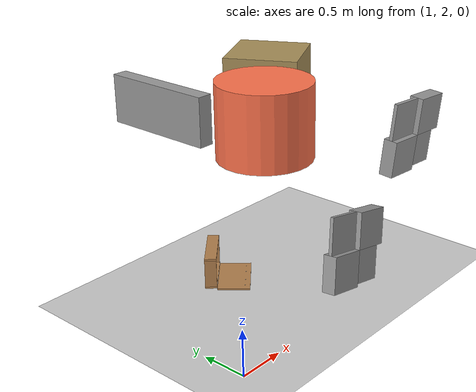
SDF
<sdf version="1.7">
 <world name="default">
  <model name="demo_clean">
   <static>1</static>
   <link name="Wall_28_clone_clone">
    <gravity>0</gravity>
    <collision name="Wall_28_Collision">
     <geometry><box><size>1.13952 0.15 0.476648</size></box></geometry>
     <pose>0 0 1.25 0 -0 0</pose>
     <surface>
      <friction>
       <ode><mu>1</mu><mu2>1</mu2><fdir1>0 0 0</fdir1><slip1>0</slip1><slip2>0</slip2></ode>
       <torsional>
        <coefficient>1</coefficient>
        <patch_radius>0</patch_radius>
        <surface_radius>0</surface_radius>
        <use_patch_radius>1</use_patch_radius>
        <ode><slip>0</slip></ode>
       </torsional>
      </friction>
      <bounce><restitution_coefficient>0</restitution_coefficient><threshold>1e+06</threshold></bounce>
      <contact>
       <collide_without_contact>0</collide_without_contact>
       <collide_without_contact_bitmask>1</collide_without_contact_bitmask>
       <collide_bitmask>1</collide_bitmask>
       <ode>
        <soft_cfm>0</soft_cfm>
        <soft_erp>0.2</soft_erp>
        <kp>1e+13</kp>
        <kd>1</kd>
        <max_vel>0.01</max_vel>
        <min_depth>0</min_depth>
       </ode>
       <bullet>
        <split_impulse>1</split_impulse>
        <split_impulse_penetration_threshold>-0.01</split_impulse_penetration_threshold>
        <soft_cfm>0</soft_cfm>
        <soft_erp>0.2</soft_erp>
        <kp>1e+13</kp>
        <kd>1</kd>
       </bullet>
      </contact>
     </surface>
    </collision>
    <visual name="Wall_28_Visual">
     <geometry><box><size>1.13952 0.15 0.476648</size></box></geometry>
     <material>
      <script><name>Gazebo/Grey</name><uri>file://media/materials/scripts/gazebo.material</uri></script>
      <ambient>1 1 1 1</ambient>
      <shader type="pixel"><normal_map>__default__</normal_map></shader>
     </material>
     <pose>0 0 1.25 0 -0 0</pose>
    </visual>
    <inertial>
     <inertia><ixx>0</ixx><iyy>0</iyy><izz>0</izz><ixy>0</ixy><ixz>0</ixz><iyz>0</iyz></inertia>
     <mass>1</mass>
    </inertial>
    <pose>1.3006 3.24462 1.01168 0 0 -1.57004</pose>
   </link>
  </model>
  <model name="static_cylinder_2">
   <pose>2.2457 2.80734 2 0 0 -1.71264</pose>
   <static>1</static>
   <allow_auto_disable>0</allow_auto_disable>
   <link name="link">
    <collision name="collision">
     <geometry><cylinder><radius>0.5</radius><length>0.8</length></cylinder></geometry>
     <max_contacts>20</max_contacts>
    </collision>
    <visual name="visual">
     <geometry><cylinder><radius>0.5</radius><length>0.8</length></cylinder></geometry>
     <material><ambient>1 0.447059 0.298039 1</ambient><diffuse>1 0.447059 0.298039 1</diffuse></material>
    </visual>
   </link>
  </model>
  <model name="dyn_box_5">
   <pose>3.10506 3.51149 2 0 -0 0.494366</pose>
   <static>1</static>
   <allow_auto_disable>0</allow_auto_disable>
   <link name="link">
    <collision name="collision">
     <geometry><box><size>0.8 0.8 0.8</size></box></geometry>
     <max_contacts>20</max_contacts>
    </collision>
    <visual name="visual">
     <geometry><box><size>0.8 0.8 0.8</size></box></geometry>
     <material>
      <ambient>0.658824 0.560784 0.34902 1</ambient>
      <diffuse>0.658824 0.560784 0.34902 1</diffuse>
     </material>
    </visual>
   </link>
  </model>
  <model name="ground_plane">
   <static>1</static>
   <link name="link">
    <collision name="collision">
     <geometry><plane><normal>0 0 1</normal><size>100 100</size></plane></geometry>
     <surface>
      <contact><collide_bitmask>65535</collide_bitmask></contact>
      <friction><ode><mu>100</mu><mu2>50</mu2></ode></friction>
     </surface>
    </collision>
    <visual name="visual">
     <cast_shadows>0</cast_shadows>
     <geometry><plane><normal>0 0 1</normal><size>100 100</size></plane></geometry>
     <material>
      <script><uri>file://media/materials/scripts/gazebo.material</uri><name>Gazebo/Grey</name></script>
     </material>
    </visual>
   </link>
  </model>
  <model name="wall_slate_1">
   <static>1</static>
   <link name="link_0">
    <inertial><mass>1</mass></inertial>
    <gravity>0</gravity>
    <visual name="visual">
     <pose>0 0.2 0.2 0 -0 0</pose>
     <geometry><box><size>0.16 0.4 0.4</size></box></geometry>
     <material>
      <lighting>1</lighting>
      <script><uri>file://media/materials/scripts/gazebo.material</uri><name>Gazebo/Grey</name></script>
      <shader type="pixel"><normal_map>__default__</normal_map></shader>
      <ambient>0.3 0.3 0.3 1</ambient>
      <diffuse>0.7 0.7 0.7 1</diffuse>
      <specular>0.01 0.01 0.01 1</specular>
      <emissive>0 0 0 1</emissive>
     </material>
    </visual>
    <visual name="ModelPreview_0::link_0::visual_1">
     <pose>0 0.2 -0.2 0 -0 0</pose>
     <geometry><box><size>0.04 0.4 0.4</size></box></geometry>
     <material>
      <lighting>1</lighting>
      <script><uri>file://media/materials/scripts/gazebo.material</uri><name>Gazebo/Grey</name></script>
      <shader type="pixel"><normal_map>__default__</normal_map></shader>
      <ambient>0.3 0.3 0.3 1</ambient>
      <diffuse>0.7 0.7 0.7 1</diffuse>
      <specular>0.01 0.01 0.01 1</specular>
      <emissive>0 0 0 1</emissive>
     </material>
    </visual>
    <visual name="ModelPreview_0::link_0::visual_2">
     <pose>0 -0.2 0.2 0 -0 0</pose>
     <geometry><box><size>0.04 0.4 0.4</size></box></geometry>
     <material>
      <lighting>1</lighting>
      <script><uri>file://media/materials/scripts/gazebo.material</uri><name>Gazebo/Grey</name></script>
      <shader type="pixel"><normal_map>__default__</normal_map></shader>
      <ambient>0.3 0.3 0.3 1</ambient>
      <diffuse>0.7 0.7 0.7 1</diffuse>
      <specular>0.01 0.01 0.01 1</specular>
      <emissive>0 0 0 1</emissive>
     </material>
    </visual>
    <visual name="ModelPreview_0::link_0::visual_3">
     <pose>0 -0.2 -0.2 0 -0 0</pose>
     <geometry><box><size>0.16 0.4 0.4</size></box></geometry>
     <material>
      <lighting>1</lighting>
      <script><uri>file://media/materials/scripts/gazebo.material</uri><name>Gazebo/Grey</name></script>
      <shader type="pixel"><normal_map>__default__</normal_map></shader>
      <ambient>0.3 0.3 0.3 1</ambient>
      <diffuse>0.7 0.7 0.7 1</diffuse>
      <specular>0.01 0.01 0.01 1</specular>
      <emissive>0 0 0 1</emissive>
     </material>
    </visual>
    <collision name="collision_2">
     <pose>0 -0.2 0.2 0 -0 0</pose>
     <geometry><box><size>0.04 0.4 0.4</size></box></geometry>
     <surface>
      <friction>
       <ode><mu>1</mu><mu2>1</mu2><fdir1>0 0 0</fdir1><slip1>0</slip1><slip2>0</slip2></ode>
       <torsional>
        <coefficient>1</coefficient>
        <patch_radius>0</patch_radius>
        <surface_radius>0</surface_radius>
        <use_patch_radius>1</use_patch_radius>
        <ode><slip>0</slip></ode>
       </torsional>
      </friction>
      <bounce><restitution_coefficient>0</restitution_coefficient><threshold>1e+06</threshold></bounce>
      <contact>
       <collide_without_contact>0</collide_without_contact>
       <collide_without_contact_bitmask>1</collide_without_contact_bitmask>
       <collide_bitmask>1</collide_bitmask>
       <ode>
        <soft_cfm>0</soft_cfm>
        <soft_erp>0.2</soft_erp>
        <kp>1e+13</kp>
        <kd>1</kd>
        <max_vel>0.01</max_vel>
        <min_depth>0</min_depth>
       </ode>
       <bullet>
        <split_impulse>1</split_impulse>
        <split_impulse_penetration_threshold>-0.01</split_impulse_penetration_threshold>
        <soft_cfm>0</soft_cfm>
        <soft_erp>0.2</soft_erp>
        <kp>1e+13</kp>
        <kd>1</kd>
       </bullet>
      </contact>
     </surface>
    </collision>
    <collision name="collision_1">
     <pose>0 0.2 -0.2 0 -0 0</pose>
     <geometry><box><size>0.04 0.4 0.4</size></box></geometry>
     <surface>
      <friction>
       <ode><mu>1</mu><mu2>1</mu2><fdir1>0 0 0</fdir1><slip1>0</slip1><slip2>0</slip2></ode>
       <torsional>
        <coefficient>1</coefficient>
        <patch_radius>0</patch_radius>
        <surface_radius>0</surface_radius>
        <use_patch_radius>1</use_patch_radius>
        <ode><slip>0</slip></ode>
       </torsional>
      </friction>
      <bounce><restitution_coefficient>0</restitution_coefficient><threshold>1e+06</threshold></bounce>
      <contact>
       <collide_without_contact>0</collide_without_contact>
       <collide_without_contact_bitmask>1</collide_without_contact_bitmask>
       <collide_bitmask>1</collide_bitmask>
       <ode>
        <soft_cfm>0</soft_cfm>
        <soft_erp>0.2</soft_erp>
        <kp>1e+13</kp>
        <kd>1</kd>
        <max_vel>0.01</max_vel>
        <min_depth>0</min_depth>
       </ode>
       <bullet>
        <split_impulse>1</split_impulse>
        <split_impulse_penetration_threshold>-0.01</split_impulse_penetration_threshold>
        <soft_cfm>0</soft_cfm>
        <soft_erp>0.2</soft_erp>
        <kp>1e+13</kp>
        <kd>1</kd>
       </bullet>
      </contact>
     </surface>
    </collision>
    <collision name="collision_4">
     <pose>0 0.2 0.2 0 -0 0</pose>
     <geometry><box><size>0.16 0.4 0.4</size></box></geometry>
     <surface>
      <friction>
       <ode><mu>1</mu><mu2>1</mu2><fdir1>0 0 0</fdir1><slip1>0</slip1><slip2>0</slip2></ode>
       <torsional>
        <coefficient>1</coefficient>
        <patch_radius>0</patch_radius>
        <surface_radius>0</surface_radius>
        <use_patch_radius>1</use_patch_radius>
        <ode><slip>0</slip></ode>
       </torsional>
      </friction>
      <bounce><restitution_coefficient>0</restitution_coefficient><threshold>1e+06</threshold></bounce>
      <contact>
       <collide_without_contact>0</collide_without_contact>
       <collide_without_contact_bitmask>1</collide_without_contact_bitmask>
       <collide_bitmask>1</collide_bitmask>
       <ode>
        <soft_cfm>0</soft_cfm>
        <soft_erp>0.2</soft_erp>
        <kp>1e+13</kp>
        <kd>1</kd>
        <max_vel>0.01</max_vel>
        <min_depth>0</min_depth>
       </ode>
       <bullet>
        <split_impulse>1</split_impulse>
        <split_impulse_penetration_threshold>-0.01</split_impulse_penetration_threshold>
        <soft_cfm>0</soft_cfm>
        <soft_erp>0.2</soft_erp>
        <kp>1e+13</kp>
        <kd>1</kd>
       </bullet>
      </contact>
     </surface>
    </collision>
    <collision name="collision_3">
     <pose>0 -0.2 -0.2 0 -0 0</pose>
     <geometry><box><size>0.16 0.4 0.4</size></box></geometry>
     <surface>
      <friction>
       <ode><mu>1</mu><mu2>1</mu2><fdir1>0 0 0</fdir1><slip1>0</slip1><slip2>0</slip2></ode>
       <torsional>
        <coefficient>1</coefficient>
        <patch_radius>0</patch_radius>
        <surface_radius>0</surface_radius>
        <use_patch_radius>1</use_patch_radius>
        <ode><slip>0</slip></ode>
       </torsional>
      </friction>
      <bounce><restitution_coefficient>0</restitution_coefficient><threshold>1e+06</threshold></bounce>
      <contact>
       <collide_without_contact>0</collide_without_contact>
       <collide_without_contact_bitmask>1</collide_without_contact_bitmask>
       <collide_bitmask>1</collide_bitmask>
       <ode>
        <soft_cfm>0</soft_cfm>
        <soft_erp>0.2</soft_erp>
        <kp>1e+13</kp>
        <kd>1</kd>
        <max_vel>0.01</max_vel>
        <min_depth>0</min_depth>
       </ode>
       <bullet>
        <split_impulse>1</split_impulse>
        <split_impulse_penetration_threshold>-0.01</split_impulse_penetration_threshold>
        <soft_cfm>0</soft_cfm>
        <soft_erp>0.2</soft_erp>
        <kp>1e+13</kp>
        <kd>1</kd>
       </bullet>
      </contact>
     </surface>
    </collision>
   </link>
   <pose>3.77851 2.06618 1.6 -0.06 0.08 -1.5659</pose>
  </model>
  <model name="wall_slate_80">
   <static>1</static>
   <link name="link_0">
    <inertial><mass>1</mass></inertial>
    <gravity>0</gravity>
    <visual name="visual">
     <pose>0 0.2 0.2 0 -0 0</pose>
     <geometry><box><size>0.16 0.4 0.4</size></box></geometry>
     <material>
      <lighting>1</lighting>
      <script><uri>file://media/materials/scripts/gazebo.material</uri><name>Gazebo/Grey</name></script>
      <shader type="pixel"><normal_map>__default__</normal_map></shader>
      <ambient>0.3 0.3 0.3 1</ambient>
      <diffuse>0.7 0.7 0.7 1</diffuse>
      <specular>0.01 0.01 0.01 1</specular>
      <emissive>0 0 0 1</emissive>
     </material>
    </visual>
    <visual name="ModelPreview_0::link_0::visual_1">
     <pose>0 0.2 -0.2 0 -0 0</pose>
     <geometry><box><size>0.04 0.4 0.4</size></box></geometry>
     <material>
      <lighting>1</lighting>
      <script><uri>file://media/materials/scripts/gazebo.material</uri><name>Gazebo/Grey</name></script>
      <shader type="pixel"><normal_map>__default__</normal_map></shader>
      <ambient>0.3 0.3 0.3 1</ambient>
      <diffuse>0.7 0.7 0.7 1</diffuse>
      <specular>0.01 0.01 0.01 1</specular>
      <emissive>0 0 0 1</emissive>
     </material>
    </visual>
    <visual name="ModelPreview_0::link_0::visual_2">
     <pose>0 -0.2 0.2 0 -0 0</pose>
     <geometry><box><size>0.04 0.4 0.4</size></box></geometry>
     <material>
      <lighting>1</lighting>
      <script><uri>file://media/materials/scripts/gazebo.material</uri><name>Gazebo/Grey</name></script>
      <shader type="pixel"><normal_map>__default__</normal_map></shader>
      <ambient>0.3 0.3 0.3 1</ambient>
      <diffuse>0.7 0.7 0.7 1</diffuse>
      <specular>0.01 0.01 0.01 1</specular>
      <emissive>0 0 0 1</emissive>
     </material>
    </visual>
    <visual name="ModelPreview_0::link_0::visual_3">
     <pose>0 -0.2 -0.2 0 -0 0</pose>
     <geometry><box><size>0.16 0.4 0.4</size></box></geometry>
     <material>
      <lighting>1</lighting>
      <script><uri>file://media/materials/scripts/gazebo.material</uri><name>Gazebo/Grey</name></script>
      <shader type="pixel"><normal_map>__default__</normal_map></shader>
      <ambient>0.3 0.3 0.3 1</ambient>
      <diffuse>0.7 0.7 0.7 1</diffuse>
      <specular>0.01 0.01 0.01 1</specular>
      <emissive>0 0 0 1</emissive>
     </material>
    </visual>
    <collision name="collision_2">
     <pose>0 -0.2 0.2 0 -0 0</pose>
     <geometry><box><size>0.04 0.4 0.4</size></box></geometry>
     <surface>
      <friction>
       <ode><mu>1</mu><mu2>1</mu2><fdir1>0 0 0</fdir1><slip1>0</slip1><slip2>0</slip2></ode>
       <torsional>
        <coefficient>1</coefficient>
        <patch_radius>0</patch_radius>
        <surface_radius>0</surface_radius>
        <use_patch_radius>1</use_patch_radius>
        <ode><slip>0</slip></ode>
       </torsional>
      </friction>
      <bounce><restitution_coefficient>0</restitution_coefficient><threshold>1e+06</threshold></bounce>
      <contact>
       <collide_without_contact>0</collide_without_contact>
       <collide_without_contact_bitmask>1</collide_without_contact_bitmask>
       <collide_bitmask>1</collide_bitmask>
       <ode>
        <soft_cfm>0</soft_cfm>
        <soft_erp>0.2</soft_erp>
        <kp>1e+13</kp>
        <kd>1</kd>
        <max_vel>0.01</max_vel>
        <min_depth>0</min_depth>
       </ode>
       <bullet>
        <split_impulse>1</split_impulse>
        <split_impulse_penetration_threshold>-0.01</split_impulse_penetration_threshold>
        <soft_cfm>0</soft_cfm>
        <soft_erp>0.2</soft_erp>
        <kp>1e+13</kp>
        <kd>1</kd>
       </bullet>
      </contact>
     </surface>
    </collision>
    <collision name="collision_1">
     <pose>0 0.2 -0.2 0 -0 0</pose>
     <geometry><box><size>0.04 0.4 0.4</size></box></geometry>
     <surface>
      <friction>
       <ode><mu>1</mu><mu2>1</mu2><fdir1>0 0 0</fdir1><slip1>0</slip1><slip2>0</slip2></ode>
       <torsional>
        <coefficient>1</coefficient>
        <patch_radius>0</patch_radius>
        <surface_radius>0</surface_radius>
        <use_patch_radius>1</use_patch_radius>
        <ode><slip>0</slip></ode>
       </torsional>
      </friction>
      <bounce><restitution_coefficient>0</restitution_coefficient><threshold>1e+06</threshold></bounce>
      <contact>
       <collide_without_contact>0</collide_without_contact>
       <collide_without_contact_bitmask>1</collide_without_contact_bitmask>
       <collide_bitmask>1</collide_bitmask>
       <ode>
        <soft_cfm>0</soft_cfm>
        <soft_erp>0.2</soft_erp>
        <kp>1e+13</kp>
        <kd>1</kd>
        <max_vel>0.01</max_vel>
        <min_depth>0</min_depth>
       </ode>
       <bullet>
        <split_impulse>1</split_impulse>
        <split_impulse_penetration_threshold>-0.01</split_impulse_penetration_threshold>
        <soft_cfm>0</soft_cfm>
        <soft_erp>0.2</soft_erp>
        <kp>1e+13</kp>
        <kd>1</kd>
       </bullet>
      </contact>
     </surface>
    </collision>
    <collision name="collision_4">
     <pose>0 0.2 0.2 0 -0 0</pose>
     <geometry><box><size>0.16 0.4 0.4</size></box></geometry>
     <surface>
      <friction>
       <ode><mu>1</mu><mu2>1</mu2><fdir1>0 0 0</fdir1><slip1>0</slip1><slip2>0</slip2></ode>
       <torsional>
        <coefficient>1</coefficient>
        <patch_radius>0</patch_radius>
        <surface_radius>0</surface_radius>
        <use_patch_radius>1</use_patch_radius>
        <ode><slip>0</slip></ode>
       </torsional>
      </friction>
      <bounce><restitution_coefficient>0</restitution_coefficient><threshold>1e+06</threshold></bounce>
      <contact>
       <collide_without_contact>0</collide_without_contact>
       <collide_without_contact_bitmask>1</collide_without_contact_bitmask>
       <collide_bitmask>1</collide_bitmask>
       <ode>
        <soft_cfm>0</soft_cfm>
        <soft_erp>0.2</soft_erp>
        <kp>1e+13</kp>
        <kd>1</kd>
        <max_vel>0.01</max_vel>
        <min_depth>0</min_depth>
       </ode>
       <bullet>
        <split_impulse>1</split_impulse>
        <split_impulse_penetration_threshold>-0.01</split_impulse_penetration_threshold>
        <soft_cfm>0</soft_cfm>
        <soft_erp>0.2</soft_erp>
        <kp>1e+13</kp>
        <kd>1</kd>
       </bullet>
      </contact>
     </surface>
    </collision>
    <collision name="collision_3">
     <pose>0 -0.2 -0.2 0 -0 0</pose>
     <geometry><box><size>0.16 0.4 0.4</size></box></geometry>
     <surface>
      <friction>
       <ode><mu>1</mu><mu2>1</mu2><fdir1>0 0 0</fdir1><slip1>0</slip1><slip2>0</slip2></ode>
       <torsional>
        <coefficient>1</coefficient>
        <patch_radius>0</patch_radius>
        <surface_radius>0</surface_radius>
        <use_patch_radius>1</use_patch_radius>
        <ode><slip>0</slip></ode>
       </torsional>
      </friction>
      <bounce><restitution_coefficient>0</restitution_coefficient><threshold>1e+06</threshold></bounce>
      <contact>
       <collide_without_contact>0</collide_without_contact>
       <collide_without_contact_bitmask>1</collide_without_contact_bitmask>
       <collide_bitmask>1</collide_bitmask>
       <ode>
        <soft_cfm>0</soft_cfm>
        <soft_erp>0.2</soft_erp>
        <kp>1e+13</kp>
        <kd>1</kd>
        <max_vel>0.01</max_vel>
        <min_depth>0</min_depth>
       </ode>
       <bullet>
        <split_impulse>1</split_impulse>
        <split_impulse_penetration_threshold>-0.01</split_impulse_penetration_threshold>
        <soft_cfm>0</soft_cfm>
        <soft_erp>0.2</soft_erp>
        <kp>1e+13</kp>
        <kd>1</kd>
       </bullet>
      </contact>
     </surface>
    </collision>
   </link>
   <pose>2.77851 2.06618 0.6 -0.18 -0.1 -1.5659</pose>
  </model>
  <model name="wooden_case_0">
   <link name="base">
    <pose>0 0 0.024 0 -0 0</pose>
    <inertial>
     <pose>-0.022184 0 0.171592 0 -0 0</pose>
     <mass>3.96264</mass>
     <inertia>
      <ixx>0.213536</ixx>
      <ixy>0</ixy>
      <ixz>0.000779377</ixz>
      <iyy>0.0708943</iyy>
      <iyz>0</iyz>
      <izz>0.154604</izz>
     </inertia>
    </inertial>
    <collision name="collision_back">
     <pose>-0.053975 0 0.1778 0 -0 0</pose>
     <geometry><box><size>0.01905 0.5461 0.3175</size></box></geometry>
     <surface>
      <contact>
       <poissons_ratio>0.347</poissons_ratio>
       <elastic_modulus>8.8e+09</elastic_modulus>
       <ode><kp>100000</kp><kd>100</kd><max_vel>100</max_vel><min_depth>0.001</min_depth></ode>
      </contact>
      <friction>
       <torsional>
        <coefficient>1</coefficient>
        <use_patch_radius>0</use_patch_radius>
        <surface_radius>0.01</surface_radius>
       </torsional>
      </friction>
     </surface>
    </collision>
    <visual name="visual_back">
     <pose>-0.053975 0 0.1778 0 -0 0</pose>
     <geometry><box><size>0.01905 0.5461 0.3175</size></box></geometry>
     <material>
      <script><uri>file://media/materials/scripts/gazebo.material</uri><name>Gazebo/Wood</name></script>
     </material>
    </visual>
    <collision name="collision_bottom">
     <pose>0 0 0.009525 0 -0 0</pose>
     <geometry><box><size>0.127 0.5842 0.01905</size></box></geometry>
     <surface>
      <contact>
       <poissons_ratio>0.347</poissons_ratio>
       <elastic_modulus>8.8e+09</elastic_modulus>
       <ode><kp>100000</kp><kd>100</kd><max_vel>100</max_vel><min_depth>0.001</min_depth></ode>
      </contact>
      <friction>
       <torsional>
        <coefficient>1</coefficient>
        <use_patch_radius>0</use_patch_radius>
        <surface_radius>0.01</surface_radius>
       </torsional>
      </friction>
     </surface>
    </collision>
    <visual name="visual_bottom">
     <pose>0 0 0.009525 0 -0 0</pose>
     <geometry><box><size>0.127 0.5842 0.01905</size></box></geometry>
     <material>
      <script><uri>file://media/materials/scripts/gazebo.material</uri><name>Gazebo/Wood</name></script>
     </material>
    </visual>
    <collision name="collision_top">
     <pose>0 0 0.346075 0 -0 0</pose>
     <geometry><box><size>0.127 0.5842 0.01905</size></box></geometry>
     <surface>
      <contact>
       <poissons_ratio>0.347</poissons_ratio>
       <elastic_modulus>8.8e+09</elastic_modulus>
       <ode><kp>100000</kp><kd>100</kd><max_vel>100</max_vel><min_depth>0.001</min_depth></ode>
      </contact>
      <friction>
       <torsional>
        <coefficient>1</coefficient>
        <use_patch_radius>0</use_patch_radius>
        <surface_radius>0.01</surface_radius>
       </torsional>
      </friction>
     </surface>
    </collision>
    <visual name="visual_top">
     <pose>0 0 0.346075 0 -0 0</pose>
     <geometry><box><size>0.127 0.5842 0.01905</size></box></geometry>
     <material>
      <script><uri>file://media/materials/scripts/gazebo.material</uri><name>Gazebo/Wood</name></script>
     </material>
    </visual>
    <collision name="collision_left">
     <pose>0 -0.282575 0.1778 0 -0 0</pose>
     <geometry><box><size>0.127 0.01905 0.3175</size></box></geometry>
     <surface>
      <contact>
       <poissons_ratio>0.347</poissons_ratio>
       <elastic_modulus>8.8e+09</elastic_modulus>
       <ode><kp>100000</kp><kd>100</kd><max_vel>100</max_vel><min_depth>0.001</min_depth></ode>
      </contact>
      <friction>
       <torsional>
        <coefficient>1</coefficient>
        <use_patch_radius>0</use_patch_radius>
        <surface_radius>0.01</surface_radius>
       </torsional>
      </friction>
     </surface>
    </collision>
    <visual name="visual_left">
     <pose>0 -0.282575 0.1778 0 -0 0</pose>
     <geometry><box><size>0.127 0.01905 0.3175</size></box></geometry>
     <material>
      <script><uri>file://media/materials/scripts/gazebo.material</uri><name>Gazebo/Wood</name></script>
     </material>
    </visual>
    <collision name="collision_right">
     <pose>0 0.282575 0.1778 0 -0 0</pose>
     <geometry><box><size>0.127 0.01905 0.3175</size></box></geometry>
     <surface>
      <contact>
       <poissons_ratio>0.347</poissons_ratio>
       <elastic_modulus>8.8e+09</elastic_modulus>
       <ode><kp>100000</kp><kd>100</kd><max_vel>100</max_vel><min_depth>0.001</min_depth></ode>
      </contact>
      <friction>
       <torsional>
        <coefficient>1</coefficient>
        <use_patch_radius>0</use_patch_radius>
        <surface_radius>0.01</surface_radius>
       </torsional>
      </friction>
     </surface>
    </collision>
    <visual name="visual_right">
     <pose>0 0.282575 0.1778 0 -0 0</pose>
     <geometry><box><size>0.127 0.01905 0.3175</size></box></geometry>
     <material>
      <script><uri>file://media/materials/scripts/gazebo.material</uri><name>Gazebo/Wood</name></script>
     </material>
    </visual>
    <collision name="collision_block_left">
     <pose>0.0095 -0.2151 -0.012 0 -0 0</pose>
     <geometry><box><size>0.108 0.05 0.024</size></box></geometry>
     <surface>
      <contact>
       <poissons_ratio>0.347</poissons_ratio>
       <elastic_modulus>8.8e+09</elastic_modulus>
       <ode><kp>100000</kp><kd>100</kd><max_vel>100</max_vel><min_depth>0.001</min_depth></ode>
      </contact>
      <friction>
       <torsional>
        <coefficient>1</coefficient>
        <use_patch_radius>0</use_patch_radius>
        <surface_radius>0.01</surface_radius>
       </torsional>
      </friction>
     </surface>
    </collision>
    <visual name="visual_block_left">
     <pose>0.0095 -0.2151 -0.012 0 -0 0</pose>
     <geometry><box><size>0.108 0.05 0.024</size></box></geometry>
     <material>
      <script><uri>file://media/materials/scripts/gazebo.material</uri><name>Gazebo/Wood</name></script>
     </material>
    </visual>
    <collision name="collision_block_right">
     <pose>0.0095 0.2151 -0.012 0 -0 0</pose>
     <geometry><box><size>0.108 0.05 0.024</size></box></geometry>
     <surface>
      <contact>
       <poissons_ratio>0.347</poissons_ratio>
       <elastic_modulus>8.8e+09</elastic_modulus>
       <ode><kp>100000</kp><kd>100</kd><max_vel>100</max_vel><min_depth>0.001</min_depth></ode>
      </contact>
      <friction>
       <torsional>
        <coefficient>1</coefficient>
        <use_patch_radius>0</use_patch_radius>
        <surface_radius>0.01</surface_radius>
       </torsional>
      </friction>
     </surface>
    </collision>
    <visual name="visual_block_right">
     <pose>0.0095 0.2151 -0.012 0 -0 0</pose>
     <geometry><box><size>0.108 0.05 0.024</size></box></geometry>
     <material>
      <script><uri>file://media/materials/scripts/gazebo.material</uri><name>Gazebo/Wood</name></script>
     </material>
    </visual>
   </link>
   <link name="lid">
    <pose>0.243775 0 0.009525 0 -0 0</pose>
    <inertial>
     <mass>1.97874</mass>
     <inertia>
      <ixx>0.0563367</ixx>
      <ixy>0</ixy>
      <ixz>0</ixz>
      <iyy>0.020911</iyy>
      <iyz>0</iyz>
      <izz>0.0771281</izz>
     </inertia>
    </inertial>
    <collision name="collision">
     <geometry><box><size>0.3556 0.5842 0.01905</size></box></geometry>
     <surface>
      <contact>
       <poissons_ratio>0.347</poissons_ratio>
       <elastic_modulus>8.8e+09</elastic_modulus>
       <ode><kp>100000</kp><kd>100</kd><max_vel>100</max_vel><min_depth>0.001</min_depth></ode>
      </contact>
      <friction>
       <torsional>
        <coefficient>1</coefficient>
        <use_patch_radius>0</use_patch_radius>
        <surface_radius>0.01</surface_radius>
       </torsional>
      </friction>
     </surface>
    </collision>
    <visual name="visual">
     <geometry><box><size>0.3556 0.5842 0.01905</size></box></geometry>
     <material>
      <script><uri>file://media/materials/scripts/gazebo.material</uri><name>Gazebo/Wood</name></script>
     </material>
    </visual>
    <visual name="tee_nut_1">
     <pose>0.122 -0.216 0 0 -0 0</pose>
     <geometry><cylinder><radius>0.00635</radius><length>0.0192405</length></cylinder></geometry>
     <material>
      <script><uri>file://media/materials/scripts/gazebo.material</uri><name>Gazebo/Grey</name></script>
     </material>
    </visual>
    <visual name="tee_nut_2">
     <pose>0.122 -0.088 0 0 -0 0</pose>
     <geometry><cylinder><radius>0.00635</radius><length>0.0192405</length></cylinder></geometry>
     <material>
      <script><uri>file://media/materials/scripts/gazebo.material</uri><name>Gazebo/Grey</name></script>
     </material>
    </visual>
    <visual name="tee_nut_3">
     <pose>0.122 0.088 0 0 -0 0</pose>
     <geometry><cylinder><radius>0.00635</radius><length>0.0192405</length></cylinder></geometry>
     <material>
      <script><uri>file://media/materials/scripts/gazebo.material</uri><name>Gazebo/Grey</name></script>
     </material>
    </visual>
    <visual name="tee_nut_4">
     <pose>0.122 0.216 0 0 -0 0</pose>
     <geometry><cylinder><radius>0.00635</radius><length>0.0192405</length></cylinder></geometry>
     <material>
      <script><uri>file://media/materials/scripts/gazebo.material</uri><name>Gazebo/Grey</name></script>
     </material>
    </visual>
   </link>
   <joint name="lid_hinge" type="revolute">
    <pose>-0.1778 0 0.01905 0 -0 0</pose>
    <parent>base</parent>
    <child>lid</child>
    <axis>
     <xyz>0 1 0</xyz>
     <limit><upper>0.523599</upper><lower>-1.5708</lower></limit>
     <dynamics><spring_reference>0</spring_reference><spring_stiffness>0</spring_stiffness></dynamics>
    </axis>
   </joint>
   <pose>2.16705 3.53482 -0.001056 0 -0.000337 -0.856669</pose>
  </model>
 </world>
</sdf>
